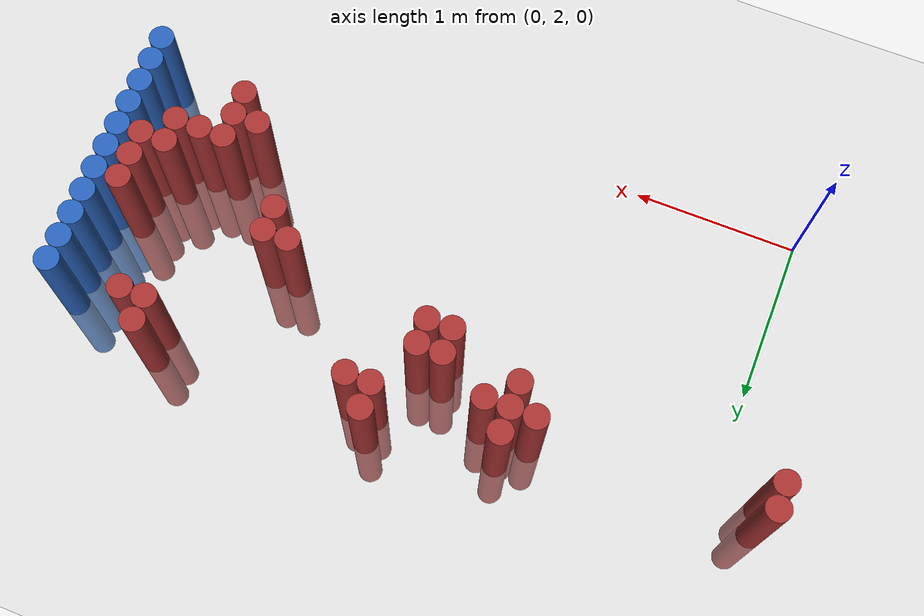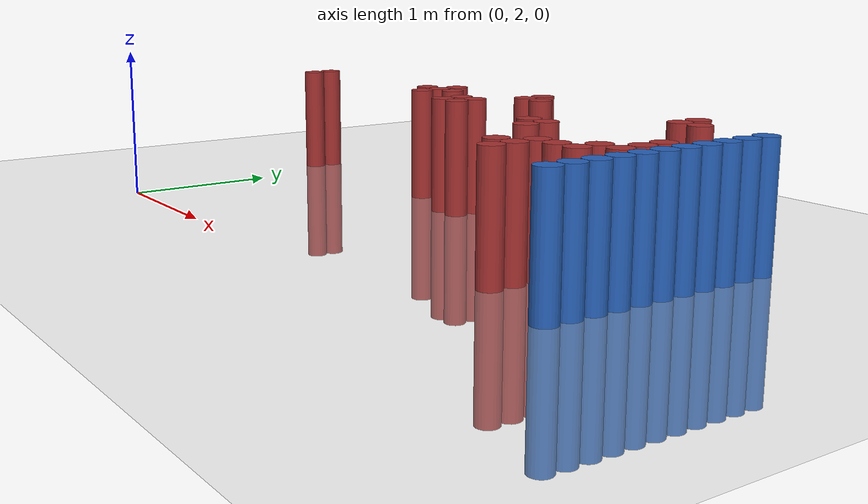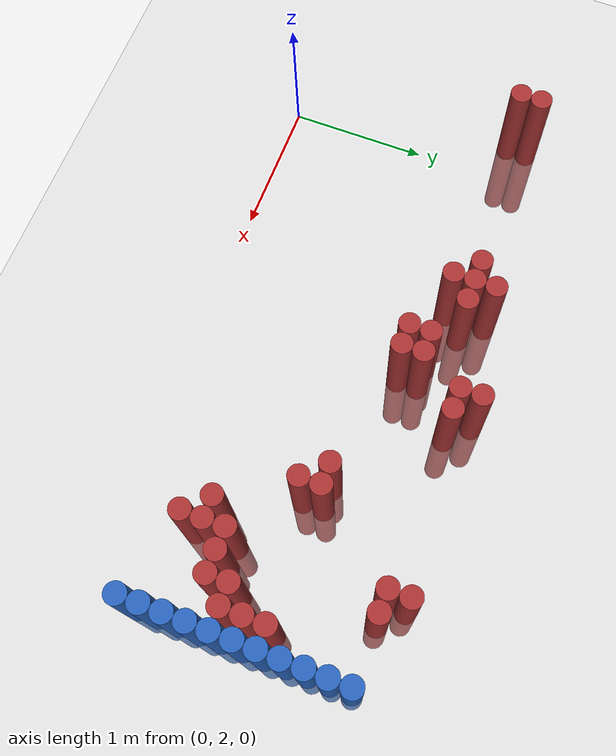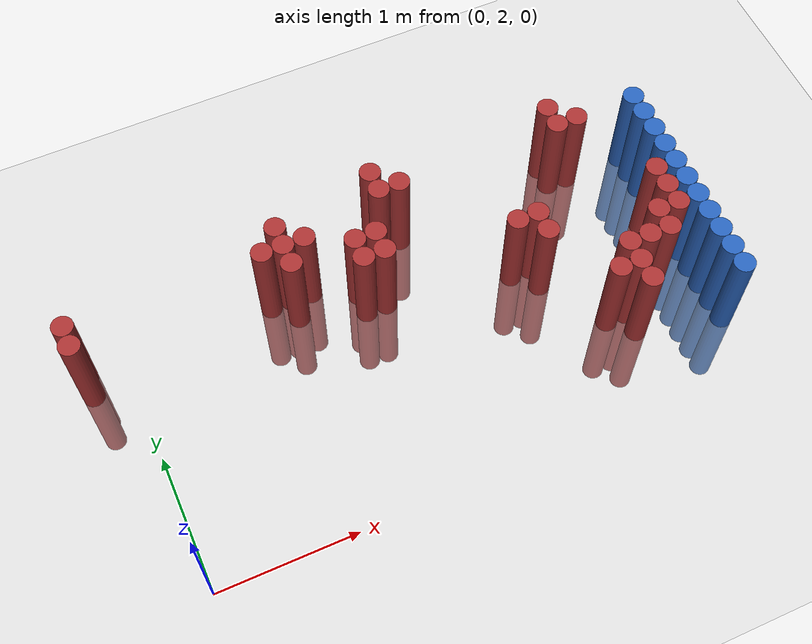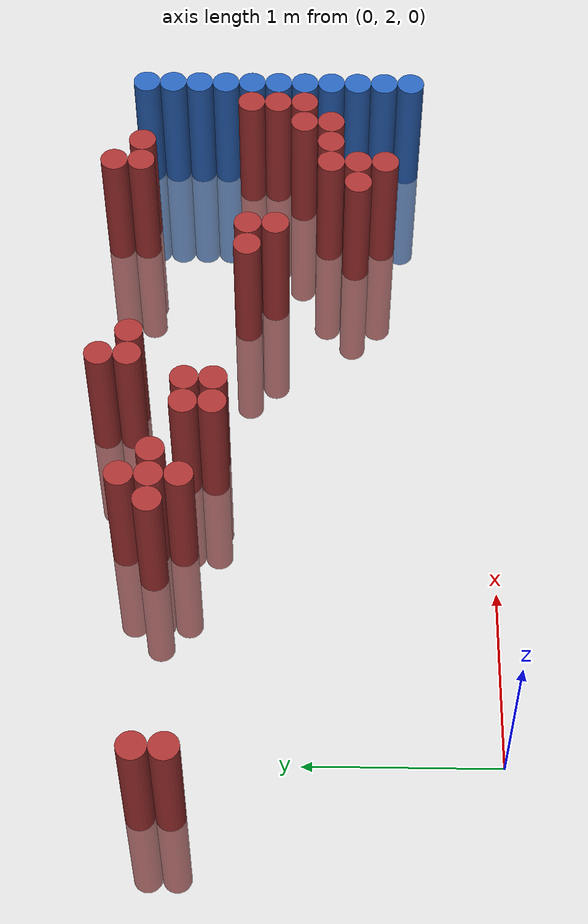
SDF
<sdf version="1.6">
 <world name="default">
  <model name="ground_plane">
   <static>1</static>
   <link name="link">
    <collision name="collision">
     <geometry><plane><normal>0 0 1</normal><size>100 100</size></plane></geometry>
     <surface><friction><ode><mu>100</mu><mu2>50</mu2></ode></friction></surface>
    </collision>
    <visual name="visual">
     <cast_shadows>0</cast_shadows>
     <geometry><plane><normal>0 0 1</normal><size>100 100</size></plane></geometry>
     <material>
      <script><uri>file://media/materials/scripts/gazebo.material</uri><name>Gazebo/Grey</name></script>
     </material>
    </visual>
   </link>
  </model>
  <model name="unit_cylinder_148">
   <static>1</static>
   <pose>3.925000 2.575000 0.000000 0.000000 0.000000 0.000000</pose>
   <link name="link">
    <inertial>
     <mass>1</mass>
     <inertia><ixx>0.145833</ixx><ixy>0</ixy><ixz>0</ixz><iyy>0.145833</iyy><iyz>0</iyz><izz>0.125</izz></inertia>
    </inertial>
    <collision name="collision">
     <geometry><cylinder><radius>0.075000</radius><length>1.5</length></cylinder></geometry>
    </collision>
    <visual name="visual">
     <geometry><cylinder><radius>0.075000</radius><length>1.5</length></cylinder></geometry>
     <material>
      <ambient>0.152000 0.379000 0.720000 1</ambient>
      <diffuse>0.152000 0.379000 0.720000 1</diffuse>
     </material>
     <material>
      <script><name>Gazebo/Grey</name><uri>file://media/materials/scripts/gazebo.material</uri></script>
     </material>
    </visual>
   </link>
  </model>
  <model name="unit_cylinder_150">
   <static>1</static>
   <pose>3.925000 2.725000 0.000000 0.000000 0.000000 0.000000</pose>
   <link name="link">
    <inertial>
     <mass>1</mass>
     <inertia><ixx>0.145833</ixx><ixy>0</ixy><ixz>0</ixz><iyy>0.145833</iyy><iyz>0</iyz><izz>0.125</izz></inertia>
    </inertial>
    <collision name="collision">
     <geometry><cylinder><radius>0.075000</radius><length>1.5</length></cylinder></geometry>
    </collision>
    <visual name="visual">
     <geometry><cylinder><radius>0.075000</radius><length>1.5</length></cylinder></geometry>
     <material>
      <ambient>0.152000 0.379000 0.720000 1</ambient>
      <diffuse>0.152000 0.379000 0.720000 1</diffuse>
     </material>
     <material>
      <script><name>Gazebo/Grey</name><uri>file://media/materials/scripts/gazebo.material</uri></script>
     </material>
    </visual>
   </link>
  </model>
  <model name="unit_cylinder_152">
   <static>1</static>
   <pose>3.925000 2.875000 0.000000 0.000000 0.000000 0.000000</pose>
   <link name="link">
    <inertial>
     <mass>1</mass>
     <inertia><ixx>0.145833</ixx><ixy>0</ixy><ixz>0</ixz><iyy>0.145833</iyy><iyz>0</iyz><izz>0.125</izz></inertia>
    </inertial>
    <collision name="collision">
     <geometry><cylinder><radius>0.075000</radius><length>1.5</length></cylinder></geometry>
    </collision>
    <visual name="visual">
     <geometry><cylinder><radius>0.075000</radius><length>1.5</length></cylinder></geometry>
     <material>
      <ambient>0.152000 0.379000 0.720000 1</ambient>
      <diffuse>0.152000 0.379000 0.720000 1</diffuse>
     </material>
     <material>
      <script><name>Gazebo/Grey</name><uri>file://media/materials/scripts/gazebo.material</uri></script>
     </material>
    </visual>
   </link>
  </model>
  <model name="unit_cylinder_154">
   <static>1</static>
   <pose>3.925000 3.025000 0.000000 0.000000 0.000000 0.000000</pose>
   <link name="link">
    <inertial>
     <mass>1</mass>
     <inertia><ixx>0.145833</ixx><ixy>0</ixy><ixz>0</ixz><iyy>0.145833</iyy><iyz>0</iyz><izz>0.125</izz></inertia>
    </inertial>
    <collision name="collision">
     <geometry><cylinder><radius>0.075000</radius><length>1.5</length></cylinder></geometry>
    </collision>
    <visual name="visual">
     <geometry><cylinder><radius>0.075000</radius><length>1.5</length></cylinder></geometry>
     <material>
      <ambient>0.152000 0.379000 0.720000 1</ambient>
      <diffuse>0.152000 0.379000 0.720000 1</diffuse>
     </material>
     <material>
      <script><name>Gazebo/Grey</name><uri>file://media/materials/scripts/gazebo.material</uri></script>
     </material>
    </visual>
   </link>
  </model>
  <model name="unit_cylinder_156">
   <static>1</static>
   <pose>3.925000 3.175000 0.000000 0.000000 0.000000 0.000000</pose>
   <link name="link">
    <inertial>
     <mass>1</mass>
     <inertia><ixx>0.145833</ixx><ixy>0</ixy><ixz>0</ixz><iyy>0.145833</iyy><iyz>0</iyz><izz>0.125</izz></inertia>
    </inertial>
    <collision name="collision">
     <geometry><cylinder><radius>0.075000</radius><length>1.5</length></cylinder></geometry>
    </collision>
    <visual name="visual">
     <geometry><cylinder><radius>0.075000</radius><length>1.5</length></cylinder></geometry>
     <material>
      <ambient>0.152000 0.379000 0.720000 1</ambient>
      <diffuse>0.152000 0.379000 0.720000 1</diffuse>
     </material>
     <material>
      <script><name>Gazebo/Grey</name><uri>file://media/materials/scripts/gazebo.material</uri></script>
     </material>
    </visual>
   </link>
  </model>
  <model name="unit_cylinder_158">
   <static>1</static>
   <pose>3.925000 3.325000 0.000000 0.000000 0.000000 0.000000</pose>
   <link name="link">
    <inertial>
     <mass>1</mass>
     <inertia><ixx>0.145833</ixx><ixy>0</ixy><ixz>0</ixz><iyy>0.145833</iyy><iyz>0</iyz><izz>0.125</izz></inertia>
    </inertial>
    <collision name="collision">
     <geometry><cylinder><radius>0.075000</radius><length>1.5</length></cylinder></geometry>
    </collision>
    <visual name="visual">
     <geometry><cylinder><radius>0.075000</radius><length>1.5</length></cylinder></geometry>
     <material>
      <ambient>0.152000 0.379000 0.720000 1</ambient>
      <diffuse>0.152000 0.379000 0.720000 1</diffuse>
     </material>
     <material>
      <script><name>Gazebo/Grey</name><uri>file://media/materials/scripts/gazebo.material</uri></script>
     </material>
    </visual>
   </link>
  </model>
  <model name="unit_cylinder_160">
   <static>1</static>
   <pose>3.925000 3.475000 0.000000 0.000000 0.000000 0.000000</pose>
   <link name="link">
    <inertial>
     <mass>1</mass>
     <inertia><ixx>0.145833</ixx><ixy>0</ixy><ixz>0</ixz><iyy>0.145833</iyy><iyz>0</iyz><izz>0.125</izz></inertia>
    </inertial>
    <collision name="collision">
     <geometry><cylinder><radius>0.075000</radius><length>1.5</length></cylinder></geometry>
    </collision>
    <visual name="visual">
     <geometry><cylinder><radius>0.075000</radius><length>1.5</length></cylinder></geometry>
     <material>
      <ambient>0.152000 0.379000 0.720000 1</ambient>
      <diffuse>0.152000 0.379000 0.720000 1</diffuse>
     </material>
     <material>
      <script><name>Gazebo/Grey</name><uri>file://media/materials/scripts/gazebo.material</uri></script>
     </material>
    </visual>
   </link>
  </model>
  <model name="unit_cylinder_162">
   <static>1</static>
   <pose>3.925000 3.625000 0.000000 0.000000 0.000000 0.000000</pose>
   <link name="link">
    <inertial>
     <mass>1</mass>
     <inertia><ixx>0.145833</ixx><ixy>0</ixy><ixz>0</ixz><iyy>0.145833</iyy><iyz>0</iyz><izz>0.125</izz></inertia>
    </inertial>
    <collision name="collision">
     <geometry><cylinder><radius>0.075000</radius><length>1.5</length></cylinder></geometry>
    </collision>
    <visual name="visual">
     <geometry><cylinder><radius>0.075000</radius><length>1.5</length></cylinder></geometry>
     <material>
      <ambient>0.152000 0.379000 0.720000 1</ambient>
      <diffuse>0.152000 0.379000 0.720000 1</diffuse>
     </material>
     <material>
      <script><name>Gazebo/Grey</name><uri>file://media/materials/scripts/gazebo.material</uri></script>
     </material>
    </visual>
   </link>
  </model>
  <model name="unit_cylinder_164">
   <static>1</static>
   <pose>3.925000 3.775000 0.000000 0.000000 0.000000 0.000000</pose>
   <link name="link">
    <inertial>
     <mass>1</mass>
     <inertia><ixx>0.145833</ixx><ixy>0</ixy><ixz>0</ixz><iyy>0.145833</iyy><iyz>0</iyz><izz>0.125</izz></inertia>
    </inertial>
    <collision name="collision">
     <geometry><cylinder><radius>0.075000</radius><length>1.5</length></cylinder></geometry>
    </collision>
    <visual name="visual">
     <geometry><cylinder><radius>0.075000</radius><length>1.5</length></cylinder></geometry>
     <material>
      <ambient>0.152000 0.379000 0.720000 1</ambient>
      <diffuse>0.152000 0.379000 0.720000 1</diffuse>
     </material>
     <material>
      <script><name>Gazebo/Grey</name><uri>file://media/materials/scripts/gazebo.material</uri></script>
     </material>
    </visual>
   </link>
  </model>
  <model name="unit_cylinder_166">
   <static>1</static>
   <pose>3.925000 3.925000 0.000000 0.000000 0.000000 0.000000</pose>
   <link name="link">
    <inertial>
     <mass>1</mass>
     <inertia><ixx>0.145833</ixx><ixy>0</ixy><ixz>0</ixz><iyy>0.145833</iyy><iyz>0</iyz><izz>0.125</izz></inertia>
    </inertial>
    <collision name="collision">
     <geometry><cylinder><radius>0.075000</radius><length>1.5</length></cylinder></geometry>
    </collision>
    <visual name="visual">
     <geometry><cylinder><radius>0.075000</radius><length>1.5</length></cylinder></geometry>
     <material>
      <ambient>0.152000 0.379000 0.720000 1</ambient>
      <diffuse>0.152000 0.379000 0.720000 1</diffuse>
     </material>
     <material>
      <script><name>Gazebo/Grey</name><uri>file://media/materials/scripts/gazebo.material</uri></script>
     </material>
    </visual>
   </link>
  </model>
  <model name="unit_cylinder_405">
   <static>1</static>
   <pose>-0.275000 3.625000 0.000000 0.000000 0.000000 0.000000</pose>
   <link name="link">
    <inertial>
     <mass>1</mass>
     <inertia><ixx>0.145833</ixx><ixy>0</ixy><ixz>0</ixz><iyy>0.145833</iyy><iyz>0</iyz><izz>0.125</izz></inertia>
    </inertial>
    <collision name="collision">
     <geometry><cylinder><radius>0.075000</radius><length>1.5</length></cylinder></geometry>
    </collision>
    <visual name="visual">
     <geometry><cylinder><radius>0.075000</radius><length>1.5</length></cylinder></geometry>
     <material>
      <ambient>0.648000 0.192000 0.192000 1</ambient>
      <diffuse>0.648000 0.192000 0.192000 1</diffuse>
     </material>
     <material>
      <script><name>Gazebo/Grey</name><uri>file://media/materials/scripts/gazebo.material</uri></script>
     </material>
    </visual>
   </link>
  </model>
  <model name="unit_cylinder_406">
   <static>1</static>
   <pose>-0.275000 3.775000 0.000000 0.000000 0.000000 0.000000</pose>
   <link name="link">
    <inertial>
     <mass>1</mass>
     <inertia><ixx>0.145833</ixx><ixy>0</ixy><ixz>0</ixz><iyy>0.145833</iyy><iyz>0</iyz><izz>0.125</izz></inertia>
    </inertial>
    <collision name="collision">
     <geometry><cylinder><radius>0.075000</radius><length>1.5</length></cylinder></geometry>
    </collision>
    <visual name="visual">
     <geometry><cylinder><radius>0.075000</radius><length>1.5</length></cylinder></geometry>
     <material>
      <ambient>0.648000 0.192000 0.192000 1</ambient>
      <diffuse>0.648000 0.192000 0.192000 1</diffuse>
     </material>
     <material>
      <script><name>Gazebo/Grey</name><uri>file://media/materials/scripts/gazebo.material</uri></script>
     </material>
    </visual>
   </link>
  </model>
  <model name="unit_cylinder_423">
   <static>1</static>
   <pose>1.075000 3.775000 0.000000 0.000000 0.000000 0.000000</pose>
   <link name="link">
    <inertial>
     <mass>1</mass>
     <inertia><ixx>0.145833</ixx><ixy>0</ixy><ixz>0</ixz><iyy>0.145833</iyy><iyz>0</iyz><izz>0.125</izz></inertia>
    </inertial>
    <collision name="collision">
     <geometry><cylinder><radius>0.075000</radius><length>1.5</length></cylinder></geometry>
    </collision>
    <visual name="visual">
     <geometry><cylinder><radius>0.075000</radius><length>1.5</length></cylinder></geometry>
     <material>
      <ambient>0.648000 0.192000 0.192000 1</ambient>
      <diffuse>0.648000 0.192000 0.192000 1</diffuse>
     </material>
     <material>
      <script><name>Gazebo/Grey</name><uri>file://media/materials/scripts/gazebo.material</uri></script>
     </material>
    </visual>
   </link>
  </model>
  <model name="unit_cylinder_428">
   <static>1</static>
   <pose>1.225000 3.625000 0.000000 0.000000 0.000000 0.000000</pose>
   <link name="link">
    <inertial>
     <mass>1</mass>
     <inertia><ixx>0.145833</ixx><ixy>0</ixy><ixz>0</ixz><iyy>0.145833</iyy><iyz>0</iyz><izz>0.125</izz></inertia>
    </inertial>
    <collision name="collision">
     <geometry><cylinder><radius>0.075000</radius><length>1.5</length></cylinder></geometry>
    </collision>
    <visual name="visual">
     <geometry><cylinder><radius>0.075000</radius><length>1.5</length></cylinder></geometry>
     <material>
      <ambient>0.648000 0.192000 0.192000 1</ambient>
      <diffuse>0.648000 0.192000 0.192000 1</diffuse>
     </material>
     <material>
      <script><name>Gazebo/Grey</name><uri>file://media/materials/scripts/gazebo.material</uri></script>
     </material>
    </visual>
   </link>
  </model>
  <model name="unit_cylinder_429">
   <static>1</static>
   <pose>1.225000 3.775000 0.000000 0.000000 0.000000 0.000000</pose>
   <link name="link">
    <inertial>
     <mass>1</mass>
     <inertia><ixx>0.145833</ixx><ixy>0</ixy><ixz>0</ixz><iyy>0.145833</iyy><iyz>0</iyz><izz>0.125</izz></inertia>
    </inertial>
    <collision name="collision">
     <geometry><cylinder><radius>0.075000</radius><length>1.5</length></cylinder></geometry>
    </collision>
    <visual name="visual">
     <geometry><cylinder><radius>0.075000</radius><length>1.5</length></cylinder></geometry>
     <material>
      <ambient>0.648000 0.192000 0.192000 1</ambient>
      <diffuse>0.648000 0.192000 0.192000 1</diffuse>
     </material>
     <material>
      <script><name>Gazebo/Grey</name><uri>file://media/materials/scripts/gazebo.material</uri></script>
     </material>
    </visual>
   </link>
  </model>
  <model name="unit_cylinder_430">
   <static>1</static>
   <pose>1.225000 3.925000 0.000000 0.000000 0.000000 0.000000</pose>
   <link name="link">
    <inertial>
     <mass>1</mass>
     <inertia><ixx>0.145833</ixx><ixy>0</ixy><ixz>0</ixz><iyy>0.145833</iyy><iyz>0</iyz><izz>0.125</izz></inertia>
    </inertial>
    <collision name="collision">
     <geometry><cylinder><radius>0.075000</radius><length>1.5</length></cylinder></geometry>
    </collision>
    <visual name="visual">
     <geometry><cylinder><radius>0.075000</radius><length>1.5</length></cylinder></geometry>
     <material>
      <ambient>0.648000 0.192000 0.192000 1</ambient>
      <diffuse>0.648000 0.192000 0.192000 1</diffuse>
     </material>
     <material>
      <script><name>Gazebo/Grey</name><uri>file://media/materials/scripts/gazebo.material</uri></script>
     </material>
    </visual>
   </link>
  </model>
  <model name="unit_cylinder_433">
   <static>1</static>
   <pose>1.375000 3.775000 0.000000 0.000000 0.000000 0.000000</pose>
   <link name="link">
    <inertial>
     <mass>1</mass>
     <inertia><ixx>0.145833</ixx><ixy>0</ixy><ixz>0</ixz><iyy>0.145833</iyy><iyz>0</iyz><izz>0.125</izz></inertia>
    </inertial>
    <collision name="collision">
     <geometry><cylinder><radius>0.075000</radius><length>1.5</length></cylinder></geometry>
    </collision>
    <visual name="visual">
     <geometry><cylinder><radius>0.075000</radius><length>1.5</length></cylinder></geometry>
     <material>
      <ambient>0.648000 0.192000 0.192000 1</ambient>
      <diffuse>0.648000 0.192000 0.192000 1</diffuse>
     </material>
     <material>
      <script><name>Gazebo/Grey</name><uri>file://media/materials/scripts/gazebo.material</uri></script>
     </material>
    </visual>
   </link>
  </model>
  <model name="unit_cylinder_436">
   <static>1</static>
   <pose>1.675000 3.475000 0.000000 0.000000 0.000000 0.000000</pose>
   <link name="link">
    <inertial>
     <mass>1</mass>
     <inertia><ixx>0.145833</ixx><ixy>0</ixy><ixz>0</ixz><iyy>0.145833</iyy><iyz>0</iyz><izz>0.125</izz></inertia>
    </inertial>
    <collision name="collision">
     <geometry><cylinder><radius>0.075000</radius><length>1.5</length></cylinder></geometry>
    </collision>
    <visual name="visual">
     <geometry><cylinder><radius>0.075000</radius><length>1.5</length></cylinder></geometry>
     <material>
      <ambient>0.648000 0.192000 0.192000 1</ambient>
      <diffuse>0.648000 0.192000 0.192000 1</diffuse>
     </material>
     <material>
      <script><name>Gazebo/Grey</name><uri>file://media/materials/scripts/gazebo.material</uri></script>
     </material>
    </visual>
   </link>
  </model>
  <model name="unit_cylinder_437">
   <static>1</static>
   <pose>1.675000 3.625000 0.000000 0.000000 0.000000 0.000000</pose>
   <link name="link">
    <inertial>
     <mass>1</mass>
     <inertia><ixx>0.145833</ixx><ixy>0</ixy><ixz>0</ixz><iyy>0.145833</iyy><iyz>0</iyz><izz>0.125</izz></inertia>
    </inertial>
    <collision name="collision">
     <geometry><cylinder><radius>0.075000</radius><length>1.5</length></cylinder></geometry>
    </collision>
    <visual name="visual">
     <geometry><cylinder><radius>0.075000</radius><length>1.5</length></cylinder></geometry>
     <material>
      <ambient>0.648000 0.192000 0.192000 1</ambient>
      <diffuse>0.648000 0.192000 0.192000 1</diffuse>
     </material>
     <material>
      <script><name>Gazebo/Grey</name><uri>file://media/materials/scripts/gazebo.material</uri></script>
     </material>
    </visual>
   </link>
  </model>
  <model name="unit_cylinder_441">
   <static>1</static>
   <pose>1.825000 3.475000 0.000000 0.000000 0.000000 0.000000</pose>
   <link name="link">
    <inertial>
     <mass>1</mass>
     <inertia><ixx>0.145833</ixx><ixy>0</ixy><ixz>0</ixz><iyy>0.145833</iyy><iyz>0</iyz><izz>0.125</izz></inertia>
    </inertial>
    <collision name="collision">
     <geometry><cylinder><radius>0.075000</radius><length>1.5</length></cylinder></geometry>
    </collision>
    <visual name="visual">
     <geometry><cylinder><radius>0.075000</radius><length>1.5</length></cylinder></geometry>
     <material>
      <ambient>0.648000 0.192000 0.192000 1</ambient>
      <diffuse>0.648000 0.192000 0.192000 1</diffuse>
     </material>
     <material>
      <script><name>Gazebo/Grey</name><uri>file://media/materials/scripts/gazebo.material</uri></script>
     </material>
    </visual>
   </link>
  </model>
  <model name="unit_cylinder_442">
   <static>1</static>
   <pose>1.825000 3.625000 0.000000 0.000000 0.000000 0.000000</pose>
   <link name="link">
    <inertial>
     <mass>1</mass>
     <inertia><ixx>0.145833</ixx><ixy>0</ixy><ixz>0</ixz><iyy>0.145833</iyy><iyz>0</iyz><izz>0.125</izz></inertia>
    </inertial>
    <collision name="collision">
     <geometry><cylinder><radius>0.075000</radius><length>1.5</length></cylinder></geometry>
    </collision>
    <visual name="visual">
     <geometry><cylinder><radius>0.075000</radius><length>1.5</length></cylinder></geometry>
     <material>
      <ambient>0.648000 0.192000 0.192000 1</ambient>
      <diffuse>0.648000 0.192000 0.192000 1</diffuse>
     </material>
     <material>
      <script><name>Gazebo/Grey</name><uri>file://media/materials/scripts/gazebo.material</uri></script>
     </material>
    </visual>
   </link>
  </model>
  <model name="unit_cylinder_446">
   <static>1</static>
   <pose>1.975000 3.925000 0.000000 0.000000 0.000000 0.000000</pose>
   <link name="link">
    <inertial>
     <mass>1</mass>
     <inertia><ixx>0.145833</ixx><ixy>0</ixy><ixz>0</ixz><iyy>0.145833</iyy><iyz>0</iyz><izz>0.125</izz></inertia>
    </inertial>
    <collision name="collision">
     <geometry><cylinder><radius>0.075000</radius><length>1.5</length></cylinder></geometry>
    </collision>
    <visual name="visual">
     <geometry><cylinder><radius>0.075000</radius><length>1.5</length></cylinder></geometry>
     <material>
      <ambient>0.648000 0.192000 0.192000 1</ambient>
      <diffuse>0.648000 0.192000 0.192000 1</diffuse>
     </material>
     <material>
      <script><name>Gazebo/Grey</name><uri>file://media/materials/scripts/gazebo.material</uri></script>
     </material>
    </visual>
   </link>
  </model>
  <model name="unit_cylinder_447">
   <static>1</static>
   <pose>1.975000 4.075000 0.000000 0.000000 0.000000 0.000000</pose>
   <link name="link">
    <inertial>
     <mass>1</mass>
     <inertia><ixx>0.145833</ixx><ixy>0</ixy><ixz>0</ixz><iyy>0.145833</iyy><iyz>0</iyz><izz>0.125</izz></inertia>
    </inertial>
    <collision name="collision">
     <geometry><cylinder><radius>0.075000</radius><length>1.5</length></cylinder></geometry>
    </collision>
    <visual name="visual">
     <geometry><cylinder><radius>0.075000</radius><length>1.5</length></cylinder></geometry>
     <material>
      <ambient>0.648000 0.192000 0.192000 1</ambient>
      <diffuse>0.648000 0.192000 0.192000 1</diffuse>
     </material>
     <material>
      <script><name>Gazebo/Grey</name><uri>file://media/materials/scripts/gazebo.material</uri></script>
     </material>
    </visual>
   </link>
  </model>
  <model name="unit_cylinder_449">
   <static>1</static>
   <pose>2.125000 3.925000 0.000000 0.000000 0.000000 0.000000</pose>
   <link name="link">
    <inertial>
     <mass>1</mass>
     <inertia><ixx>0.145833</ixx><ixy>0</ixy><ixz>0</ixz><iyy>0.145833</iyy><iyz>0</iyz><izz>0.125</izz></inertia>
    </inertial>
    <collision name="collision">
     <geometry><cylinder><radius>0.075000</radius><length>1.5</length></cylinder></geometry>
    </collision>
    <visual name="visual">
     <geometry><cylinder><radius>0.075000</radius><length>1.5</length></cylinder></geometry>
     <material>
      <ambient>0.648000 0.192000 0.192000 1</ambient>
      <diffuse>0.648000 0.192000 0.192000 1</diffuse>
     </material>
     <material>
      <script><name>Gazebo/Grey</name><uri>file://media/materials/scripts/gazebo.material</uri></script>
     </material>
    </visual>
   </link>
  </model>
  <model name="unit_cylinder_459">
   <static>1</static>
   <pose>2.725000 3.325000 0.000000 0.000000 0.000000 0.000000</pose>
   <link name="link">
    <inertial>
     <mass>1</mass>
     <inertia><ixx>0.145833</ixx><ixy>0</ixy><ixz>0</ixz><iyy>0.145833</iyy><iyz>0</iyz><izz>0.125</izz></inertia>
    </inertial>
    <collision name="collision">
     <geometry><cylinder><radius>0.075000</radius><length>1.5</length></cylinder></geometry>
    </collision>
    <visual name="visual">
     <geometry><cylinder><radius>0.075000</radius><length>1.5</length></cylinder></geometry>
     <material>
      <ambient>0.648000 0.192000 0.192000 1</ambient>
      <diffuse>0.648000 0.192000 0.192000 1</diffuse>
     </material>
     <material>
      <script><name>Gazebo/Grey</name><uri>file://media/materials/scripts/gazebo.material</uri></script>
     </material>
    </visual>
   </link>
  </model>
  <model name="unit_cylinder_462">
   <static>1</static>
   <pose>2.875000 3.175000 0.000000 0.000000 0.000000 0.000000</pose>
   <link name="link">
    <inertial>
     <mass>1</mass>
     <inertia><ixx>0.145833</ixx><ixy>0</ixy><ixz>0</ixz><iyy>0.145833</iyy><iyz>0</iyz><izz>0.125</izz></inertia>
    </inertial>
    <collision name="collision">
     <geometry><cylinder><radius>0.075000</radius><length>1.5</length></cylinder></geometry>
    </collision>
    <visual name="visual">
     <geometry><cylinder><radius>0.075000</radius><length>1.5</length></cylinder></geometry>
     <material>
      <ambient>0.648000 0.192000 0.192000 1</ambient>
      <diffuse>0.648000 0.192000 0.192000 1</diffuse>
     </material>
     <material>
      <script><name>Gazebo/Grey</name><uri>file://media/materials/scripts/gazebo.material</uri></script>
     </material>
    </visual>
   </link>
  </model>
  <model name="unit_cylinder_463">
   <static>1</static>
   <pose>2.875000 3.325000 0.000000 0.000000 0.000000 0.000000</pose>
   <link name="link">
    <inertial>
     <mass>1</mass>
     <inertia><ixx>0.145833</ixx><ixy>0</ixy><ixz>0</ixz><iyy>0.145833</iyy><iyz>0</iyz><izz>0.125</izz></inertia>
    </inertial>
    <collision name="collision">
     <geometry><cylinder><radius>0.075000</radius><length>1.5</length></cylinder></geometry>
    </collision>
    <visual name="visual">
     <geometry><cylinder><radius>0.075000</radius><length>1.5</length></cylinder></geometry>
     <material>
      <ambient>0.648000 0.192000 0.192000 1</ambient>
      <diffuse>0.648000 0.192000 0.192000 1</diffuse>
     </material>
     <material>
      <script><name>Gazebo/Grey</name><uri>file://media/materials/scripts/gazebo.material</uri></script>
     </material>
    </visual>
   </link>
  </model>
  <model name="unit_cylinder_468">
   <static>1</static>
   <pose>3.175000 2.725000 0.000000 0.000000 0.000000 0.000000</pose>
   <link name="link">
    <inertial>
     <mass>1</mass>
     <inertia><ixx>0.145833</ixx><ixy>0</ixy><ixz>0</ixz><iyy>0.145833</iyy><iyz>0</iyz><izz>0.125</izz></inertia>
    </inertial>
    <collision name="collision">
     <geometry><cylinder><radius>0.075000</radius><length>1.5</length></cylinder></geometry>
    </collision>
    <visual name="visual">
     <geometry><cylinder><radius>0.075000</radius><length>1.5</length></cylinder></geometry>
     <material>
      <ambient>0.648000 0.192000 0.192000 1</ambient>
      <diffuse>0.648000 0.192000 0.192000 1</diffuse>
     </material>
     <material>
      <script><name>Gazebo/Grey</name><uri>file://media/materials/scripts/gazebo.material</uri></script>
     </material>
    </visual>
   </link>
  </model>
  <model name="unit_cylinder_470">
   <static>1</static>
   <pose>3.325000 2.575000 0.000000 0.000000 0.000000 0.000000</pose>
   <link name="link">
    <inertial>
     <mass>1</mass>
     <inertia><ixx>0.145833</ixx><ixy>0</ixy><ixz>0</ixz><iyy>0.145833</iyy><iyz>0</iyz><izz>0.125</izz></inertia>
    </inertial>
    <collision name="collision">
     <geometry><cylinder><radius>0.075000</radius><length>1.5</length></cylinder></geometry>
    </collision>
    <visual name="visual">
     <geometry><cylinder><radius>0.075000</radius><length>1.5</length></cylinder></geometry>
     <material>
      <ambient>0.648000 0.192000 0.192000 1</ambient>
      <diffuse>0.648000 0.192000 0.192000 1</diffuse>
     </material>
     <material>
      <script><name>Gazebo/Grey</name><uri>file://media/materials/scripts/gazebo.material</uri></script>
     </material>
    </visual>
   </link>
  </model>
  <model name="unit_cylinder_471">
   <static>1</static>
   <pose>3.325000 2.725000 0.000000 0.000000 0.000000 0.000000</pose>
   <link name="link">
    <inertial>
     <mass>1</mass>
     <inertia><ixx>0.145833</ixx><ixy>0</ixy><ixz>0</ixz><iyy>0.145833</iyy><iyz>0</iyz><izz>0.125</izz></inertia>
    </inertial>
    <collision name="collision">
     <geometry><cylinder><radius>0.075000</radius><length>1.5</length></cylinder></geometry>
    </collision>
    <visual name="visual">
     <geometry><cylinder><radius>0.075000</radius><length>1.5</length></cylinder></geometry>
     <material>
      <ambient>0.648000 0.192000 0.192000 1</ambient>
      <diffuse>0.648000 0.192000 0.192000 1</diffuse>
     </material>
     <material>
      <script><name>Gazebo/Grey</name><uri>file://media/materials/scripts/gazebo.material</uri></script>
     </material>
    </visual>
   </link>
  </model>
  <model name="unit_cylinder_472">
   <static>1</static>
   <pose>3.325000 2.875000 0.000000 0.000000 0.000000 0.000000</pose>
   <link name="link">
    <inertial>
     <mass>1</mass>
     <inertia><ixx>0.145833</ixx><ixy>0</ixy><ixz>0</ixz><iyy>0.145833</iyy><iyz>0</iyz><izz>0.125</izz></inertia>
    </inertial>
    <collision name="collision">
     <geometry><cylinder><radius>0.075000</radius><length>1.5</length></cylinder></geometry>
    </collision>
    <visual name="visual">
     <geometry><cylinder><radius>0.075000</radius><length>1.5</length></cylinder></geometry>
     <material>
      <ambient>0.648000 0.192000 0.192000 1</ambient>
      <diffuse>0.648000 0.192000 0.192000 1</diffuse>
     </material>
     <material>
      <script><name>Gazebo/Grey</name><uri>file://media/materials/scripts/gazebo.material</uri></script>
     </material>
    </visual>
   </link>
  </model>
  <model name="unit_cylinder_473">
   <static>1</static>
   <pose>3.325000 3.925000 0.000000 0.000000 0.000000 0.000000</pose>
   <link name="link">
    <inertial>
     <mass>1</mass>
     <inertia><ixx>0.145833</ixx><ixy>0</ixy><ixz>0</ixz><iyy>0.145833</iyy><iyz>0</iyz><izz>0.125</izz></inertia>
    </inertial>
    <collision name="collision">
     <geometry><cylinder><radius>0.075000</radius><length>1.5</length></cylinder></geometry>
    </collision>
    <visual name="visual">
     <geometry><cylinder><radius>0.075000</radius><length>1.5</length></cylinder></geometry>
     <material>
      <ambient>0.648000 0.192000 0.192000 1</ambient>
      <diffuse>0.648000 0.192000 0.192000 1</diffuse>
     </material>
     <material>
      <script><name>Gazebo/Grey</name><uri>file://media/materials/scripts/gazebo.material</uri></script>
     </material>
    </visual>
   </link>
  </model>
  <model name="unit_cylinder_474">
   <static>1</static>
   <pose>3.325000 4.075000 0.000000 0.000000 0.000000 0.000000</pose>
   <link name="link">
    <inertial>
     <mass>1</mass>
     <inertia><ixx>0.145833</ixx><ixy>0</ixy><ixz>0</ixz><iyy>0.145833</iyy><iyz>0</iyz><izz>0.125</izz></inertia>
    </inertial>
    <collision name="collision">
     <geometry><cylinder><radius>0.075000</radius><length>1.5</length></cylinder></geometry>
    </collision>
    <visual name="visual">
     <geometry><cylinder><radius>0.075000</radius><length>1.5</length></cylinder></geometry>
     <material>
      <ambient>0.648000 0.192000 0.192000 1</ambient>
      <diffuse>0.648000 0.192000 0.192000 1</diffuse>
     </material>
     <material>
      <script><name>Gazebo/Grey</name><uri>file://media/materials/scripts/gazebo.material</uri></script>
     </material>
    </visual>
   </link>
  </model>
  <model name="unit_cylinder_481">
   <static>1</static>
   <pose>3.475000 2.875000 0.000000 0.000000 0.000000 0.000000</pose>
   <link name="link">
    <inertial>
     <mass>1</mass>
     <inertia><ixx>0.145833</ixx><ixy>0</ixy><ixz>0</ixz><iyy>0.145833</iyy><iyz>0</iyz><izz>0.125</izz></inertia>
    </inertial>
    <collision name="collision">
     <geometry><cylinder><radius>0.075000</radius><length>1.5</length></cylinder></geometry>
    </collision>
    <visual name="visual">
     <geometry><cylinder><radius>0.075000</radius><length>1.5</length></cylinder></geometry>
     <material>
      <ambient>0.648000 0.192000 0.192000 1</ambient>
      <diffuse>0.648000 0.192000 0.192000 1</diffuse>
     </material>
     <material>
      <script><name>Gazebo/Grey</name><uri>file://media/materials/scripts/gazebo.material</uri></script>
     </material>
    </visual>
   </link>
  </model>
  <model name="unit_cylinder_482">
   <static>1</static>
   <pose>3.475000 3.925000 0.000000 0.000000 0.000000 0.000000</pose>
   <link name="link">
    <inertial>
     <mass>1</mass>
     <inertia><ixx>0.145833</ixx><ixy>0</ixy><ixz>0</ixz><iyy>0.145833</iyy><iyz>0</iyz><izz>0.125</izz></inertia>
    </inertial>
    <collision name="collision">
     <geometry><cylinder><radius>0.075000</radius><length>1.5</length></cylinder></geometry>
    </collision>
    <visual name="visual">
     <geometry><cylinder><radius>0.075000</radius><length>1.5</length></cylinder></geometry>
     <material>
      <ambient>0.648000 0.192000 0.192000 1</ambient>
      <diffuse>0.648000 0.192000 0.192000 1</diffuse>
     </material>
     <material>
      <script><name>Gazebo/Grey</name><uri>file://media/materials/scripts/gazebo.material</uri></script>
     </material>
    </visual>
   </link>
  </model>
  <model name="unit_cylinder_500">
   <static>1</static>
   <pose>3.625000 2.875000 0.000000 0.000000 0.000000 0.000000</pose>
   <link name="link">
    <inertial>
     <mass>1</mass>
     <inertia><ixx>0.145833</ixx><ixy>0</ixy><ixz>0</ixz><iyy>0.145833</iyy><iyz>0</iyz><izz>0.125</izz></inertia>
    </inertial>
    <collision name="collision">
     <geometry><cylinder><radius>0.075000</radius><length>1.5</length></cylinder></geometry>
    </collision>
    <visual name="visual">
     <geometry><cylinder><radius>0.075000</radius><length>1.5</length></cylinder></geometry>
     <material>
      <ambient>0.648000 0.192000 0.192000 1</ambient>
      <diffuse>0.648000 0.192000 0.192000 1</diffuse>
     </material>
     <material>
      <script><name>Gazebo/Grey</name><uri>file://media/materials/scripts/gazebo.material</uri></script>
     </material>
    </visual>
   </link>
  </model>
  <model name="unit_cylinder_501">
   <static>1</static>
   <pose>3.625000 3.025000 0.000000 0.000000 0.000000 0.000000</pose>
   <link name="link">
    <inertial>
     <mass>1</mass>
     <inertia><ixx>0.145833</ixx><ixy>0</ixy><ixz>0</ixz><iyy>0.145833</iyy><iyz>0</iyz><izz>0.125</izz></inertia>
    </inertial>
    <collision name="collision">
     <geometry><cylinder><radius>0.075000</radius><length>1.5</length></cylinder></geometry>
    </collision>
    <visual name="visual">
     <geometry><cylinder><radius>0.075000</radius><length>1.5</length></cylinder></geometry>
     <material>
      <ambient>0.648000 0.192000 0.192000 1</ambient>
      <diffuse>0.648000 0.192000 0.192000 1</diffuse>
     </material>
     <material>
      <script><name>Gazebo/Grey</name><uri>file://media/materials/scripts/gazebo.material</uri></script>
     </material>
    </visual>
   </link>
  </model>
  <model name="unit_cylinder_511">
   <static>1</static>
   <pose>3.775000 3.025000 0.000000 0.000000 0.000000 0.000000</pose>
   <link name="link">
    <inertial>
     <mass>1</mass>
     <inertia><ixx>0.145833</ixx><ixy>0</ixy><ixz>0</ixz><iyy>0.145833</iyy><iyz>0</iyz><izz>0.125</izz></inertia>
    </inertial>
    <collision name="collision">
     <geometry><cylinder><radius>0.075000</radius><length>1.5</length></cylinder></geometry>
    </collision>
    <visual name="visual">
     <geometry><cylinder><radius>0.075000</radius><length>1.5</length></cylinder></geometry>
     <material>
      <ambient>0.648000 0.192000 0.192000 1</ambient>
      <diffuse>0.648000 0.192000 0.192000 1</diffuse>
     </material>
     <material>
      <script><name>Gazebo/Grey</name><uri>file://media/materials/scripts/gazebo.material</uri></script>
     </material>
    </visual>
   </link>
  </model>
  <model name="unit_cylinder_512">
   <static>1</static>
   <pose>3.775000 3.175000 0.000000 0.000000 0.000000 0.000000</pose>
   <link name="link">
    <inertial>
     <mass>1</mass>
     <inertia><ixx>0.145833</ixx><ixy>0</ixy><ixz>0</ixz><iyy>0.145833</iyy><iyz>0</iyz><izz>0.125</izz></inertia>
    </inertial>
    <collision name="collision">
     <geometry><cylinder><radius>0.075000</radius><length>1.5</length></cylinder></geometry>
    </collision>
    <visual name="visual">
     <geometry><cylinder><radius>0.075000</radius><length>1.5</length></cylinder></geometry>
     <material>
      <ambient>0.648000 0.192000 0.192000 1</ambient>
      <diffuse>0.648000 0.192000 0.192000 1</diffuse>
     </material>
     <material>
      <script><name>Gazebo/Grey</name><uri>file://media/materials/scripts/gazebo.material</uri></script>
     </material>
    </visual>
   </link>
  </model>
  <model name="unit_cylinder_513">
   <static>1</static>
   <pose>3.775000 3.325000 0.000000 0.000000 0.000000 0.000000</pose>
   <link name="link">
    <inertial>
     <mass>1</mass>
     <inertia><ixx>0.145833</ixx><ixy>0</ixy><ixz>0</ixz><iyy>0.145833</iyy><iyz>0</iyz><izz>0.125</izz></inertia>
    </inertial>
    <collision name="collision">
     <geometry><cylinder><radius>0.075000</radius><length>1.5</length></cylinder></geometry>
    </collision>
    <visual name="visual">
     <geometry><cylinder><radius>0.075000</radius><length>1.5</length></cylinder></geometry>
     <material>
      <ambient>0.648000 0.192000 0.192000 1</ambient>
      <diffuse>0.648000 0.192000 0.192000 1</diffuse>
     </material>
     <material>
      <script><name>Gazebo/Grey</name><uri>file://media/materials/scripts/gazebo.material</uri></script>
     </material>
    </visual>
   </link>
  </model>
  <model name="unit_cylinder_545">
   <static>1</static>
   <pose>3.925000 2.425000 0.000000 0.000000 0.000000 0.000000</pose>
   <link name="link">
    <inertial>
     <mass>1</mass>
     <inertia><ixx>0.145833</ixx><ixy>0</ixy><ixz>0</ixz><iyy>0.145833</iyy><iyz>0</iyz><izz>0.125</izz></inertia>
    </inertial>
    <collision name="collision">
     <geometry><cylinder><radius>0.075000</radius><length>1.5</length></cylinder></geometry>
    </collision>
    <visual name="visual">
     <geometry><cylinder><radius>0.075000</radius><length>1.5</length></cylinder></geometry>
     <material>
      <ambient>0.152000 0.379000 0.720000 1</ambient>
      <diffuse>0.152000 0.379000 0.720000 1</diffuse>
     </material>
     <material>
      <script><name>Gazebo/Grey</name><uri>file://media/materials/scripts/gazebo.material</uri></script>
     </material>
    </visual>
   </link>
  </model>
  <model name="unit_cylinder_546">
   <static>1</static>
   <pose>3.925000 2.575000 0.000000 0.000000 0.000000 0.000000</pose>
   <link name="link">
    <inertial>
     <mass>1</mass>
     <inertia><ixx>0.145833</ixx><ixy>0</ixy><ixz>0</ixz><iyy>0.145833</iyy><iyz>0</iyz><izz>0.125</izz></inertia>
    </inertial>
    <collision name="collision">
     <geometry><cylinder><radius>0.075000</radius><length>1.5</length></cylinder></geometry>
    </collision>
    <visual name="visual">
     <geometry><cylinder><radius>0.075000</radius><length>1.5</length></cylinder></geometry>
     <material>
      <ambient>0.152000 0.379000 0.720000 1</ambient>
      <diffuse>0.152000 0.379000 0.720000 1</diffuse>
     </material>
     <material>
      <script><name>Gazebo/Grey</name><uri>file://media/materials/scripts/gazebo.material</uri></script>
     </material>
    </visual>
   </link>
  </model>
  <model name="unit_cylinder_547">
   <static>1</static>
   <pose>3.925000 2.725000 0.000000 0.000000 0.000000 0.000000</pose>
   <link name="link">
    <inertial>
     <mass>1</mass>
     <inertia><ixx>0.145833</ixx><ixy>0</ixy><ixz>0</ixz><iyy>0.145833</iyy><iyz>0</iyz><izz>0.125</izz></inertia>
    </inertial>
    <collision name="collision">
     <geometry><cylinder><radius>0.075000</radius><length>1.5</length></cylinder></geometry>
    </collision>
    <visual name="visual">
     <geometry><cylinder><radius>0.075000</radius><length>1.5</length></cylinder></geometry>
     <material>
      <ambient>0.152000 0.379000 0.720000 1</ambient>
      <diffuse>0.152000 0.379000 0.720000 1</diffuse>
     </material>
     <material>
      <script><name>Gazebo/Grey</name><uri>file://media/materials/scripts/gazebo.material</uri></script>
     </material>
    </visual>
   </link>
  </model>
  <model name="unit_cylinder_548">
   <static>1</static>
   <pose>3.925000 2.875000 0.000000 0.000000 0.000000 0.000000</pose>
   <link name="link">
    <inertial>
     <mass>1</mass>
     <inertia><ixx>0.145833</ixx><ixy>0</ixy><ixz>0</ixz><iyy>0.145833</iyy><iyz>0</iyz><izz>0.125</izz></inertia>
    </inertial>
    <collision name="collision">
     <geometry><cylinder><radius>0.075000</radius><length>1.5</length></cylinder></geometry>
    </collision>
    <visual name="visual">
     <geometry><cylinder><radius>0.075000</radius><length>1.5</length></cylinder></geometry>
     <material>
      <ambient>0.152000 0.379000 0.720000 1</ambient>
      <diffuse>0.152000 0.379000 0.720000 1</diffuse>
     </material>
     <material>
      <script><name>Gazebo/Grey</name><uri>file://media/materials/scripts/gazebo.material</uri></script>
     </material>
    </visual>
   </link>
  </model>
  <model name="unit_cylinder_549">
   <static>1</static>
   <pose>3.925000 3.025000 0.000000 0.000000 0.000000 0.000000</pose>
   <link name="link">
    <inertial>
     <mass>1</mass>
     <inertia><ixx>0.145833</ixx><ixy>0</ixy><ixz>0</ixz><iyy>0.145833</iyy><iyz>0</iyz><izz>0.125</izz></inertia>
    </inertial>
    <collision name="collision">
     <geometry><cylinder><radius>0.075000</radius><length>1.5</length></cylinder></geometry>
    </collision>
    <visual name="visual">
     <geometry><cylinder><radius>0.075000</radius><length>1.5</length></cylinder></geometry>
     <material>
      <ambient>0.152000 0.379000 0.720000 1</ambient>
      <diffuse>0.152000 0.379000 0.720000 1</diffuse>
     </material>
     <material>
      <script><name>Gazebo/Grey</name><uri>file://media/materials/scripts/gazebo.material</uri></script>
     </material>
    </visual>
   </link>
  </model>
  <model name="unit_cylinder_550">
   <static>1</static>
   <pose>3.925000 3.175000 0.000000 0.000000 0.000000 0.000000</pose>
   <link name="link">
    <inertial>
     <mass>1</mass>
     <inertia><ixx>0.145833</ixx><ixy>0</ixy><ixz>0</ixz><iyy>0.145833</iyy><iyz>0</iyz><izz>0.125</izz></inertia>
    </inertial>
    <collision name="collision">
     <geometry><cylinder><radius>0.075000</radius><length>1.5</length></cylinder></geometry>
    </collision>
    <visual name="visual">
     <geometry><cylinder><radius>0.075000</radius><length>1.5</length></cylinder></geometry>
     <material>
      <ambient>0.152000 0.379000 0.720000 1</ambient>
      <diffuse>0.152000 0.379000 0.720000 1</diffuse>
     </material>
     <material>
      <script><name>Gazebo/Grey</name><uri>file://media/materials/scripts/gazebo.material</uri></script>
     </material>
    </visual>
   </link>
  </model>
  <model name="unit_cylinder_551">
   <static>1</static>
   <pose>3.925000 3.325000 0.000000 0.000000 0.000000 0.000000</pose>
   <link name="link">
    <inertial>
     <mass>1</mass>
     <inertia><ixx>0.145833</ixx><ixy>0</ixy><ixz>0</ixz><iyy>0.145833</iyy><iyz>0</iyz><izz>0.125</izz></inertia>
    </inertial>
    <collision name="collision">
     <geometry><cylinder><radius>0.075000</radius><length>1.5</length></cylinder></geometry>
    </collision>
    <visual name="visual">
     <geometry><cylinder><radius>0.075000</radius><length>1.5</length></cylinder></geometry>
     <material>
      <ambient>0.152000 0.379000 0.720000 1</ambient>
      <diffuse>0.152000 0.379000 0.720000 1</diffuse>
     </material>
     <material>
      <script><name>Gazebo/Grey</name><uri>file://media/materials/scripts/gazebo.material</uri></script>
     </material>
    </visual>
   </link>
  </model>
  <model name="unit_cylinder_552">
   <static>1</static>
   <pose>3.925000 3.475000 0.000000 0.000000 0.000000 0.000000</pose>
   <link name="link">
    <inertial>
     <mass>1</mass>
     <inertia><ixx>0.145833</ixx><ixy>0</ixy><ixz>0</ixz><iyy>0.145833</iyy><iyz>0</iyz><izz>0.125</izz></inertia>
    </inertial>
    <collision name="collision">
     <geometry><cylinder><radius>0.075000</radius><length>1.5</length></cylinder></geometry>
    </collision>
    <visual name="visual">
     <geometry><cylinder><radius>0.075000</radius><length>1.5</length></cylinder></geometry>
     <material>
      <ambient>0.152000 0.379000 0.720000 1</ambient>
      <diffuse>0.152000 0.379000 0.720000 1</diffuse>
     </material>
     <material>
      <script><name>Gazebo/Grey</name><uri>file://media/materials/scripts/gazebo.material</uri></script>
     </material>
    </visual>
   </link>
  </model>
  <model name="unit_cylinder_553">
   <static>1</static>
   <pose>3.925000 3.625000 0.000000 0.000000 0.000000 0.000000</pose>
   <link name="link">
    <inertial>
     <mass>1</mass>
     <inertia><ixx>0.145833</ixx><ixy>0</ixy><ixz>0</ixz><iyy>0.145833</iyy><iyz>0</iyz><izz>0.125</izz></inertia>
    </inertial>
    <collision name="collision">
     <geometry><cylinder><radius>0.075000</radius><length>1.5</length></cylinder></geometry>
    </collision>
    <visual name="visual">
     <geometry><cylinder><radius>0.075000</radius><length>1.5</length></cylinder></geometry>
     <material>
      <ambient>0.152000 0.379000 0.720000 1</ambient>
      <diffuse>0.152000 0.379000 0.720000 1</diffuse>
     </material>
     <material>
      <script><name>Gazebo/Grey</name><uri>file://media/materials/scripts/gazebo.material</uri></script>
     </material>
    </visual>
   </link>
  </model>
  <model name="unit_cylinder_554">
   <static>1</static>
   <pose>3.925000 3.775000 0.000000 0.000000 0.000000 0.000000</pose>
   <link name="link">
    <inertial>
     <mass>1</mass>
     <inertia><ixx>0.145833</ixx><ixy>0</ixy><ixz>0</ixz><iyy>0.145833</iyy><iyz>0</iyz><izz>0.125</izz></inertia>
    </inertial>
    <collision name="collision">
     <geometry><cylinder><radius>0.075000</radius><length>1.5</length></cylinder></geometry>
    </collision>
    <visual name="visual">
     <geometry><cylinder><radius>0.075000</radius><length>1.5</length></cylinder></geometry>
     <material>
      <ambient>0.152000 0.379000 0.720000 1</ambient>
      <diffuse>0.152000 0.379000 0.720000 1</diffuse>
     </material>
     <material>
      <script><name>Gazebo/Grey</name><uri>file://media/materials/scripts/gazebo.material</uri></script>
     </material>
    </visual>
   </link>
  </model>
  <model name="unit_cylinder_555">
   <static>1</static>
   <pose>3.925000 3.925000 0.000000 0.000000 0.000000 0.000000</pose>
   <link name="link">
    <inertial>
     <mass>1</mass>
     <inertia><ixx>0.145833</ixx><ixy>0</ixy><ixz>0</ixz><iyy>0.145833</iyy><iyz>0</iyz><izz>0.125</izz></inertia>
    </inertial>
    <collision name="collision">
     <geometry><cylinder><radius>0.075000</radius><length>1.5</length></cylinder></geometry>
    </collision>
    <visual name="visual">
     <geometry><cylinder><radius>0.075000</radius><length>1.5</length></cylinder></geometry>
     <material>
      <ambient>0.152000 0.379000 0.720000 1</ambient>
      <diffuse>0.152000 0.379000 0.720000 1</diffuse>
     </material>
     <material>
      <script><name>Gazebo/Grey</name><uri>file://media/materials/scripts/gazebo.material</uri></script>
     </material>
    </visual>
   </link>
  </model>
 </world>
</sdf>
